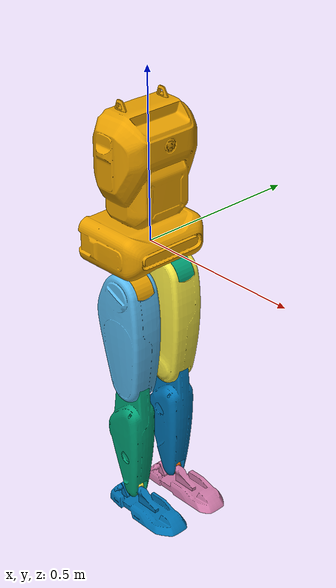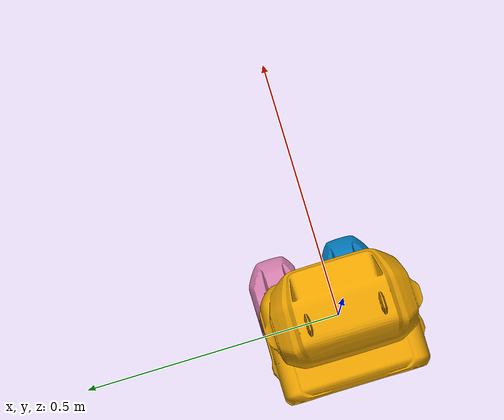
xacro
<?xml version="1.0" encoding="utf-8"?>

<robot name="sa01">
  <link name="base">
    <inertial>
      <origin xyz="-0.030427 0.00055533 0.10697"/>
      <mass value="10.176" />
      <inertia
        ixx="0.24707543"
        ixy="0.0000714263"
        ixz="-0.017967096"
        iyy="0.21999950689"
        iyz="-0.00116322262"
        izz="0.09662582243" />
    </inertial>
    <visual>
      <geometry>
        <mesh filename="file://$(find sa01_description)/meshes/base_link.obj" />
      </geometry>
    </visual>
    <collision>
      <origin xyz="0 0 0.03"/>
      <geometry>
        <box size="0.2 0.2 0.3" />
      </geometry>
    </collision>
  </link>

  <link name="leg_l1_link">
    <inertial>
      <origin xyz="0.0003501 0.00043844 -0.0020201"/>
      <mass value="1.6592" />
      <inertia
        ixx="0.00170970094"
        ixy="0.00000339099"
        ixz="-0.00000364314"
        iyy="0.00222453198"
        iyz="-0.000018428"
        izz="0.00296249862" />
    </inertial>
    <visual>
      <geometry>
        <mesh filename="file://$(find sa01_description)/meshes/leg_link_01.obj" />
      </geometry>
    </visual>
  </link>

  <joint name="leg_l1_joint" type="revolute">
    <origin xyz="0 0.075 0"/>
    <parent link="base" />
    <child link="leg_l1_link" />
    <axis xyz="1 0 0" />
    <limit lower="-0.523" upper="0.523" effort="140" velocity="25" />
  </joint>

  <link name="leg_l2_link">
    <inertial>
      <origin xyz="0.00038352 0.0010044 -0.12214"/>
      <mass value="1.8008" />
      <inertia
        ixx="0.0028514924"
        ixy="-0.00000811841"
        ixz="0.00000081779"
        iyy="0.00367928378"
        iyz="0.00001485978"
        izz="0.00191736965" />
    </inertial>
    <visual>
      <geometry>
        <mesh filename="file://$(find sa01_description)/meshes/leg_link_02.obj" />
      </geometry>
    </visual>
  </link>

  <joint name="leg_l2_joint" type="revolute">
    <parent link="leg_l1_link" />
    <child link="leg_l2_link" />
    <axis xyz="0 0 1" />
    <limit lower="-0.3" upper="0.3" effort="140" velocity="25" />
  </joint>

  <link name="leg_l3_link">
    <inertial>
      <origin xyz="-0.0017654 0.0012877 -0.13954"/>
      <mass value="3.9299" />
      <inertia
        ixx="0.03203144433"
        ixy="0.00003937845"
        ixz="0.00141442438"
        iyy="0.03561061150"
        iyz="-0.00080953754"
        izz="0.01016719156" />
    </inertial>
    <visual>
      <geometry>
        <mesh filename="file://$(find sa01_description)/meshes/leg_link_03.obj" />
      </geometry>
    </visual>
    <collision>
      <origin xyz="0 0 -0.17"/>
      <geometry>
        <box size="0.08 0.08 0.25" />
      </geometry>
    </collision>
  </link>

  <joint name="leg_l3_joint" type="revolute">
    <origin xyz="0 0 -0.1311"/>
    <parent link="leg_l2_link" />
    <child link="leg_l3_link" />
    <axis xyz="0 1 0" />
    <limit lower="-1.204" upper="1.204" effort="140" velocity="25" />
  </joint>

  <link name="leg_l4_link">
    <inertial>
      <origin xyz="-0.00751 -0.00041 -0.16322"/>
      <mass value="2.72510" />
      <inertia
        ixx="0.03032295461"
        ixy="-0.00007371616"
        ixz="-0.00028406531"
        iyy="0.03234908064"
        iyz="0.00021740427"
        izz="0.00389340359" />
    </inertial>
    <visual>
      <geometry>
        <mesh filename="file://$(find sa01_description)/meshes/leg_link_04.obj" />
      </geometry>
    </visual>
    <collision>
      <origin xyz="0 0 -0.18"/>
      <geometry>
        <box size="0.05 0.05 0.28" />
      </geometry>
    </collision>
  </link>

  <joint name="leg_l4_joint" type="revolute">
    <origin xyz="0 5.9998E-05 -0.3"/>
    <parent link="leg_l3_link" />
    <child link="leg_l4_link" />
    <axis xyz="0 1 0" />
    <limit lower="0.0" upper="2.268" effort="140" velocity="25" />
  </joint>

  <link name="leg_l5_link">
    <inertial>
      <origin xyz="-2.5946E-10 -5E-05 -3.4499E-09"/>
      <mass value="0.16135" />
      <inertia
        ixx="3.0975E-05"
        ixy="0"
        ixz="0"
        iyy="3.1274E-05"
        iyz="0"
        izz="3.1681E-05" />
    </inertial>
    <visual>
      <geometry>
        <mesh filename="file://$(find sa01_description)/meshes/leg_link_05.obj" />
      </geometry>
    </visual>
  </link>

  <joint name="leg_l5_joint" type="revolute">
    <origin xyz="0 7.0122E-05 -0.37"/>
    <parent link="leg_l4_link" />
    <child link="leg_l5_link" />
    <axis xyz="0 1 0" />
    <limit lower="-1.0" upper="0.6" effort="24" velocity="31" />
  </joint>

  <link name="leg_l6_link">
    <inertial>
      <origin xyz="0.030366 0.0019502 -0.03549"/>
      <mass value="1.1926" />
      <inertia
        ixx="0.00105334189"
        ixy="-0.0"
        ixz="0.0"
        iyy="0.00606712875"
        iyz="0.0"
        izz="0.00646061141" />
    </inertial>
    <visual>
      <geometry>
        <mesh filename="file://$(find sa01_description)/meshes/leg_link_06.obj" />
      </geometry>
    </visual>
    <collision>
      <geometry>
        <mesh filename="file://$(find sa01_description)/meshes/leg_link_06.obj" />
      </geometry>
    </collision>
  </link>

  <joint name="leg_l6_joint" type="revolute">
    <origin xyz="0 0 0"/>
    <parent link="leg_l5_link" />
    <child link="leg_l6_link" />
    <axis xyz="1 0 0" />
    <limit lower="-0.6" upper="0.6" effort="24" velocity="31" />
  </joint>

  <link
    name="leg_r1_link">
    <inertial>
      <origin xyz="0.0003501 0.00043844 -0.0020201"/>
      <mass value="1.6592" />
      <inertia
        ixx="0.00170970094"
        ixy="0.00000339099"
        ixz="-0.00000364314"
        iyy="0.00222453198"
        iyz="-0.000018428"
        izz="0.00296249862" />
    </inertial>
    <visual>
      <geometry>
        <mesh filename="file://$(find sa01_description)/meshes/leg_link_01.obj" />
      </geometry>
    </visual>
  </link>

  <joint name="leg_r1_joint" type="revolute">
    <origin xyz="0 -0.075 0"/>
    <parent link="base" />
    <child link="leg_r1_link" />
    <axis xyz="1 0 0" />
    <limit lower="-0.523" upper="0.523" effort="140" velocity="25" />
  </joint>

  <link name="leg_r2_link">
    <inertial>
      <origin xyz="-0.00038352 -0.0010044 -0.12214"/>
      <mass value="1.8008" />
      <inertia
        ixx="0.0028514924"
        ixy="-0.00000811841"
        ixz="-0.00000081779"
        iyy="0.00367928378"
        iyz="-0.00001485978"
        izz="0.00191736965" />
    </inertial>
    <visual>
      <geometry>
        <mesh filename="file://$(find sa01_description)/meshes/leg_link_02.obj" />
      </geometry>
    </visual>
  </link>

  <joint name="leg_r2_joint" type="revolute">
    <parent link="leg_r1_link" />
    <child link="leg_r2_link" />
    <axis xyz="0 0 1" />
    <limit lower="-0.3" upper="0.3" effort="140" velocity="25" />
  </joint>

  <link name="leg_r3_link">
    <inertial>
      <origin xyz="-0.0017403 -0.0012919 -0.13954"/>
      <mass value="3.9294" />
      <inertia
        ixx="0.03202203311"
        ixy="-0.00003371707"
        ixz="0.00139789064"
        iyy="0.03559852831"
        iyz="0.00081210058"
        izz="0.01016409159" />
    </inertial>
    <visual>
      <geometry>
        <mesh filename="file://$(find sa01_description)/meshes/leg_link_03.obj" scale="1 -1 1" />
      </geometry>
    </visual>
    <collision>
      <origin xyz="0 0 -0.17"/>
      <geometry>
        <box size="0.08 0.08 0.25" />
      </geometry>
    </collision>
  </link>

  <joint name="leg_r3_joint" type="revolute">
    <origin xyz="0 0 -0.1311"/>
    <parent link="leg_r2_link" />
    <child link="leg_r3_link" />
    <axis xyz="0 1 0" />
    <limit lower="-1.204" upper="1.204" effort="140" velocity="25" />
  </joint>

  <link name="leg_r4_link">
    <inertial>
      <origin xyz="-0.00751 0.00047274 -0.16321"/>
      <mass value="2.72497" />
      <inertia
        ixx="0.03032110864"
        ixy="0.00007373941"
        ixz="-0.00028430637"
        iyy="0.03234733040"
        iyz="-0.00021746443"
        izz="0.00389339565" />
    </inertial>
    <visual>
      <geometry>
        <mesh filename="file://$(find sa01_description)/meshes/leg_link_04.obj" scale="1 -1 1" />
      </geometry>
    </visual>
    <collision>
      <origin xyz="0 0 -0.18"/>
      <geometry>
        <box size="0.05 0.05 0.28" />
      </geometry>
    </collision>
  </link>

  <joint name="leg_r4_joint" type="revolute">
    <origin xyz="0 -5.9998E-05 -0.3"/>
    <parent link="leg_r3_link" />
    <child link="leg_r4_link" />
    <axis xyz="0 1 0" />
    <limit lower="0.0" upper="2.268" effort="140" velocity="25" />
  </joint>

  <link name="leg_r5_link">
    <inertial>
      <origin xyz="2.5946E-10 5E-05 -3.4499E-09"/>
      <mass value="0.16135" />
      <inertia
        ixx="3.0975E-05"
        ixy="0"
        ixz="0"
        iyy="3.1274E-05"
        iyz="0"
        izz="3.1274E-05" />
    </inertial>
    <visual>
      <geometry>
        <mesh filename="file://$(find sa01_description)/meshes/leg_link_05.obj" />
      </geometry>
    </visual>
  </link>

  <joint name="leg_r5_joint" type="revolute">
    <origin xyz="0 -7.0122E-05 -0.37"/>
    <parent link="leg_r4_link" />
    <child link="leg_r5_link" />
    <axis xyz="0 1 0" />
    <limit lower="-1.0" upper="0.6" effort="24" velocity="31" />
  </joint>

  <link name="leg_r6_link">
    <inertial>
      <origin xyz="0.030366 -0.0019504 -0.03549"/>
      <mass value="1.1926" />
      <inertia
        ixx="0.00105336111"
        ixy="0.0"
        ixz="0.0"
        iyy="0.00606728572"
        iyz="-0.0"
        izz="0.00646075577" />
    </inertial>
    <visual>
      <geometry>
        <mesh filename="file://$(find sa01_description)/meshes/leg_link_06.obj" scale="1 -1 1"/>
      </geometry>
    </visual>
    <collision>
      <geometry>
        <mesh filename="file://$(find sa01_description)/meshes/leg_link_06.obj" scale="1 -1 1"/>
      </geometry>
    </collision>
  </link>

  <joint name="leg_r6_joint" type="revolute">
    <parent link="leg_r5_link" />
    <child link="leg_r6_link" />
    <axis xyz="1 0 0" />
    <limit lower="-0.6" upper="0.6" effort="24" velocity="31" />
  </joint>

</robot>
